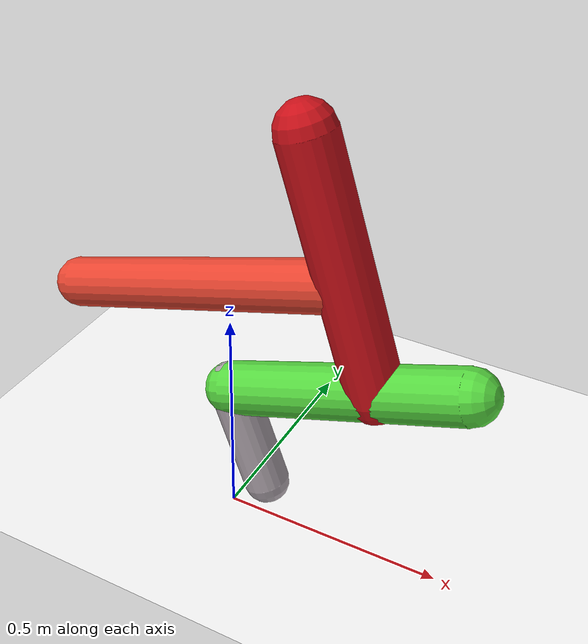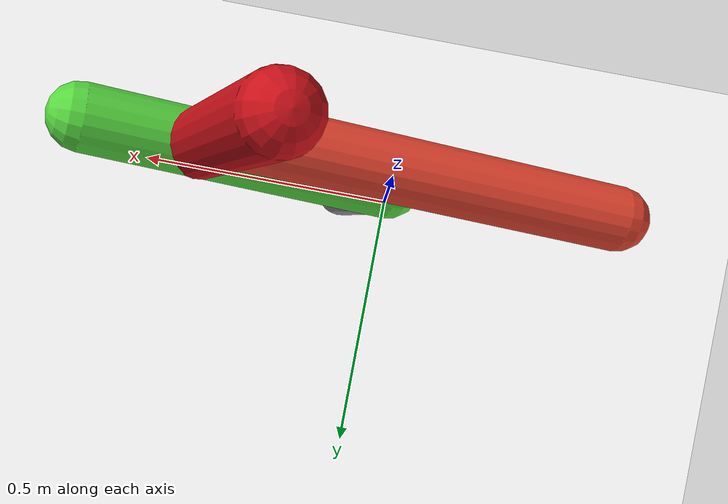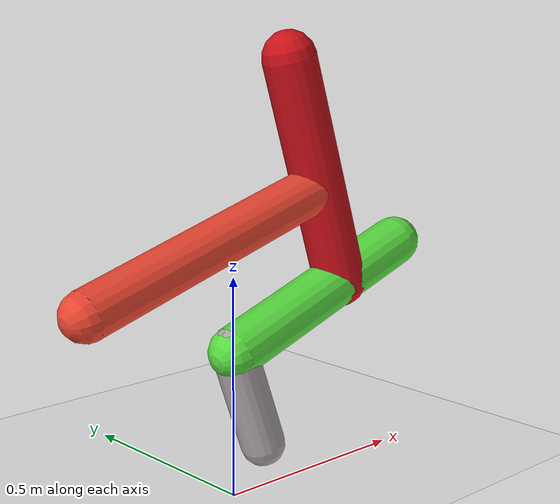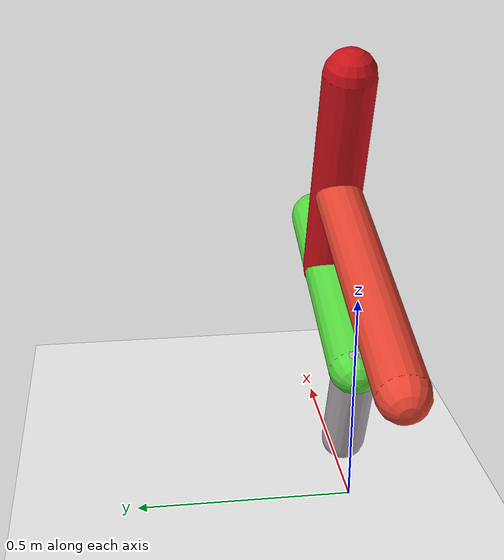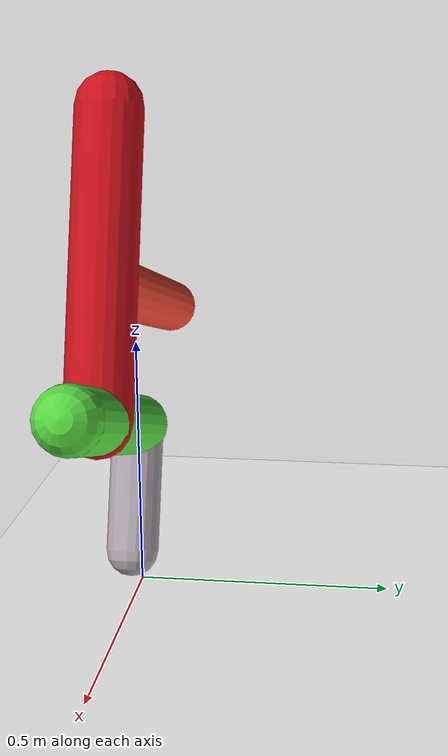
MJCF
<mujoco model="morphology">
  <option timestep="0.01"/>
  <default>
    <default class="/"/>
  </default>
  <asset>
    <texture name="texplane" type="2d" builtin="checker" rgb1="0.1 0.2 0.3" rgb2="0.2 0.3 0.4" width="300" height="300"/>
    <material name="MatPlane" class="/" texture="texplane" texrepeat="20 20" specular="1" shininess="1" reflectance="0.5"/>
  </asset>
  <worldbody>
    <light name="//unnamed_light_0" class="/" directional="true" pos="0 0 1.5" dir="0 0 -1.3" cutoff="1e+02" exponent="1" diffuse="1 1 1" specular="0.1 0.1 0.1"/>
    <geom name="ground" class="/" type="plane" size="15 15 0.5" material="MatPlane" rgba="1 1 1 1"/>
    <body name="body" pos="0 0 0.34">
      <geom name="geom0" class="/" type="capsule" contype="1" conaffinity="1" condim="3" size="0.051" rgba="0.69 0.65 0.68 1" friction="0.4 0.1 0.1" fromto="0 0 0 0.088 0 -0.24"/>
      <body name="body1" pos="0.0027 0 -0.0074">
        <geom name="geom1" class="/" type="capsule" contype="1" conaffinity="1" condim="3" size="0.059" rgba="0.34 0.85 0.25 1" friction="0.4 0.1 0.1" fromto="0 0 0 0.52 0 0.18"/>
        <body name="body2" pos="0.33 0 0.11">
          <geom name="geom2" class="/" type="capsule" contype="1" conaffinity="1" condim="3" size="0.061" rgba="0.8 0.067 0.1 1" friction="0.4 0.1 0.1" fromto="0 0 0 -0.17 0 0.52"/>
          <body name="body3" pos="-0.073 0 0.23">
            <geom name="geom3" class="/" type="capsule" contype="1" conaffinity="1" condim="3" size="0.055" rgba="0.91 0.27 0.19 1" friction="0.4 0.1 0.1" fromto="0 0 0 -0.64 0 -0.19"/>
            <joint name="joint3" class="/" type="hinge" axis="0 1 0" limited="true" stiffness="20" range="-51 51" armature="0.1" damping="2"/>
          </body>
          <joint name="joint2" class="/" type="hinge" axis="0 1 0" limited="true" stiffness="20" range="-54 54" armature="0.1" damping="2"/>
        </body>
        <joint name="joint1" class="/" type="hinge" axis="0 1 0" limited="true" stiffness="20" range="-38 38" armature="0.1" damping="2"/>
      </body>
      <joint name="rootx" class="/" type="slide" axis="1 0 0" limited="false" stiffness="0" armature="0" damping="0"/>
      <joint name="rootz" class="/" type="slide" axis="0 0 1" limited="false" stiffness="0" armature="0" damping="0"/>
      <joint name="rooty" class="/" type="hinge" axis="0 1 0" limited="false" stiffness="0" armature="0" damping="0"/>
    </body>
  </worldbody>
  <actuator>
    <motor name="motor3" class="/" ctrllimited="true" ctrlrange="-1 1" gear="1.7e+02" joint="joint3"/>
    <motor name="motor2" class="/" ctrllimited="true" ctrlrange="-1 1" gear="1.3e+02" joint="joint2"/>
    <motor name="motor1" class="/" ctrllimited="true" ctrlrange="-1 1" gear="1.3e+02" joint="joint1"/>
  </actuator>
  <sensor>
    <subtreelinvel name="velocity" body="body"/>
  </sensor>
</mujoco>
